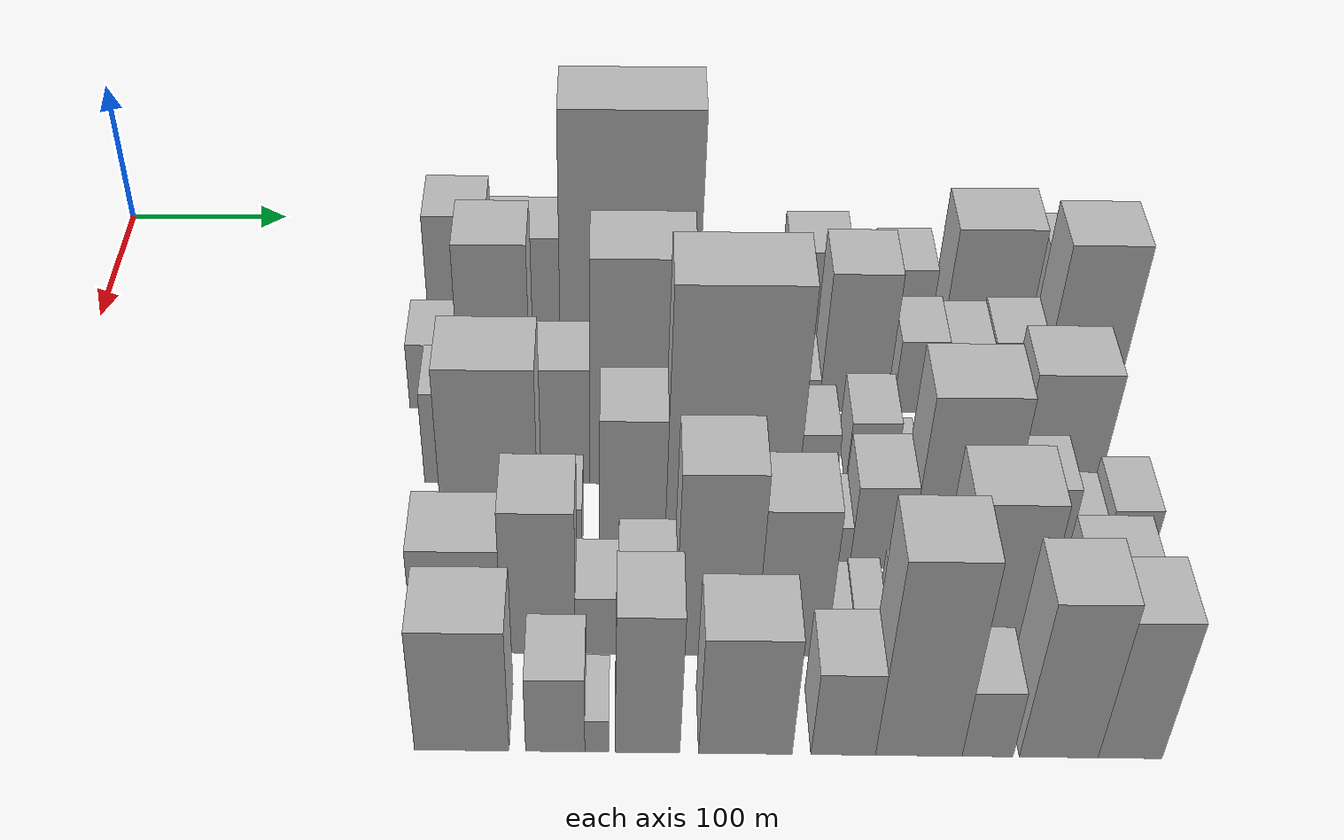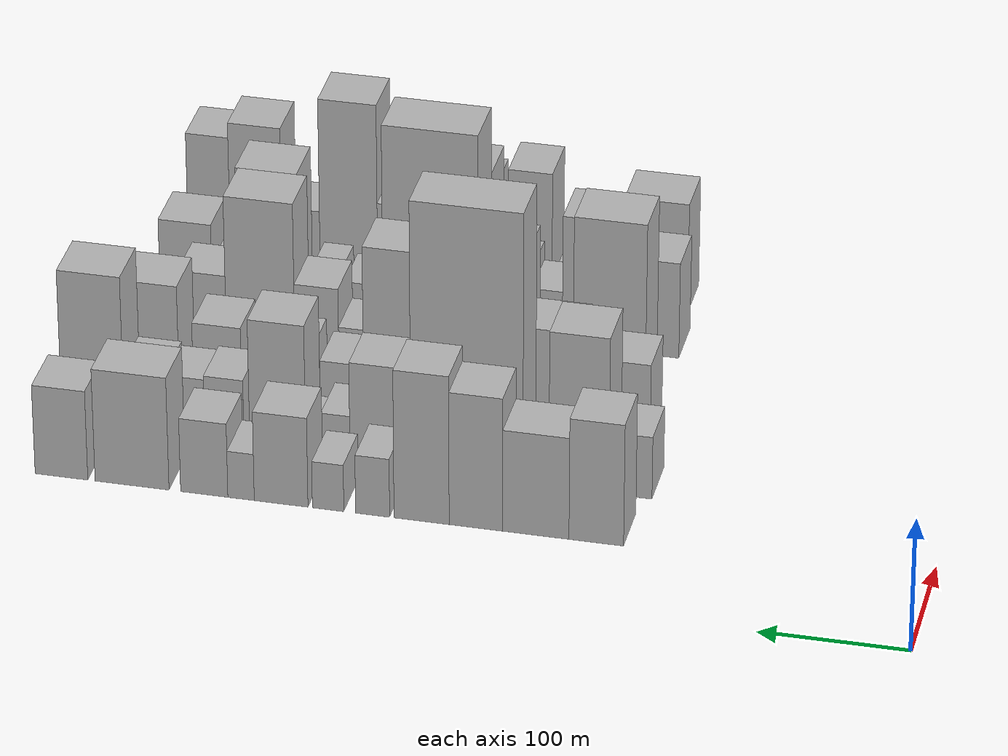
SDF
<sdf version="1.6">
 <world name="default">
  <model name="building_37">
   <static>1</static>
   <pose>100.0000 222.0039 0 0.000000 0.000000 0.000000</pose>
   <link name="link">
    <pose>0 0 46.50 0 0 0</pose>
    <collision name="collision"><geometry><box><size>40.0000 36.5468 93.0000</size></box></geometry></collision>
    <visual name="visual">
     <cast_shadows>0</cast_shadows>
     <geometry><box><size>40.0000 36.5468 93.0000</size></box></geometry>
     <material>
      <script>
       <uri>model://HANNAS_wall/materials/scripts</uri>
       <uri>model://HANNAS_wall/materials/textures</uri>
       <name>vrc/HANNAS_wall</name>
      </script>
     </material>
    </visual>
   </link>
  </model>
  <model name="building_38">
   <static>1</static>
   <pose>100.0000 262.5701 0 0.000000 0.000000 0.000000</pose>
   <link name="link">
    <pose>0 0 39.00 0 0 0</pose>
    <collision name="collision"><geometry><box><size>40.0000 44.5857 78.0000</size></box></geometry></collision>
    <visual name="visual">
     <cast_shadows>0</cast_shadows>
     <geometry><box><size>40.0000 44.5857 78.0000</size></box></geometry>
     <material>
      <script>
       <uri>model://HANNAS_wall/materials/scripts</uri>
       <uri>model://HANNAS_wall/materials/textures</uri>
       <name>vrc/HANNAS_wall</name>
      </script>
     </material>
    </visual>
   </link>
  </model>
  <model name="building_39">
   <static>1</static>
   <pose>100.0000 302.8785 0 0.000000 0.000000 0.000000</pose>
   <link name="link">
    <pose>0 0 51.00 0 0 0</pose>
    <collision name="collision"><geometry><box><size>40.0000 36.0310 102.0000</size></box></geometry></collision>
    <visual name="visual">
     <cast_shadows>0</cast_shadows>
     <geometry><box><size>40.0000 36.0310 102.0000</size></box></geometry>
     <material>
      <script>
       <uri>model://HANNAS_wall/materials/scripts</uri>
       <uri>model://HANNAS_wall/materials/textures</uri>
       <name>vrc/HANNAS_wall</name>
      </script>
     </material>
    </visual>
   </link>
  </model>
  <model name="building_40">
   <static>1</static>
   <pose>100.0000 339.5356 0 0.000000 0.000000 0.000000</pose>
   <link name="link">
    <pose>0 0 57.00 0 0 0</pose>
    <collision name="collision"><geometry><box><size>40.0000 37.2832 114.0000</size></box></geometry></collision>
    <visual name="visual">
     <cast_shadows>0</cast_shadows>
     <geometry><box><size>40.0000 37.2832 114.0000</size></box></geometry>
     <material>
      <script>
       <uri>model://HANNAS_wall/materials/scripts</uri>
       <uri>model://HANNAS_wall/materials/textures</uri>
       <name>vrc/HANNAS_wall</name>
      </script>
     </material>
    </visual>
   </link>
  </model>
  <model name="building_41">
   <static>1</static>
   <pose>100.0000 372.7177 0 0.000000 0.000000 0.000000</pose>
   <link name="link">
    <pose>0 0 22.50 0 0 0</pose>
    <collision name="collision"><geometry><box><size>40.0000 23.0812 45.0000</size></box></geometry></collision>
    <visual name="visual">
     <cast_shadows>0</cast_shadows>
     <geometry><box><size>40.0000 23.0812 45.0000</size></box></geometry>
     <material>
      <script>
       <uri>model://HANNAS_wall/materials/scripts</uri>
       <uri>model://HANNAS_wall/materials/textures</uri>
       <name>vrc/HANNAS_wall</name>
      </script>
     </material>
    </visual>
   </link>
  </model>
  <model name="building_42">
   <static>1</static>
   <pose>100.0000 402.9499 0 0.000000 0.000000 0.000000</pose>
   <link name="link">
    <pose>0 0 18.00 0 0 0</pose>
    <collision name="collision"><geometry><box><size>40.0000 21.3832 36.0000</size></box></geometry></collision>
    <visual name="visual">
     <cast_shadows>0</cast_shadows>
     <geometry><box><size>40.0000 21.3832 36.0000</size></box></geometry>
     <material>
      <script>
       <uri>model://HANNAS_wall/materials/scripts</uri>
       <uri>model://HANNAS_wall/materials/textures</uri>
       <name>vrc/HANNAS_wall</name>
      </script>
     </material>
    </visual>
   </link>
  </model>
  <model name="building_43">
   <static>1</static>
   <pose>100.0000 434.9707 0 0.000000 0.000000 0.000000</pose>
   <link name="link">
    <pose>0 0 34.50 0 0 0</pose>
    <collision name="collision"><geometry><box><size>40.0000 36.6584 69.0000</size></box></geometry></collision>
    <visual name="visual">
     <cast_shadows>0</cast_shadows>
     <geometry><box><size>40.0000 36.6584 69.0000</size></box></geometry>
     <material>
      <script>
       <uri>model://HANNAS_wall/materials/scripts</uri>
       <uri>model://HANNAS_wall/materials/textures</uri>
       <name>vrc/HANNAS_wall</name>
      </script>
     </material>
    </visual>
   </link>
  </model>
  <model name="building_44">
   <static>1</static>
   <pose>100.0000 462.3307 0 0.000000 0.000000 0.000000</pose>
   <link name="link">
    <pose>0 0 18.00 0 0 0</pose>
    <collision name="collision"><geometry><box><size>40.0000 18.0616 36.0000</size></box></geometry></collision>
    <visual name="visual">
     <cast_shadows>0</cast_shadows>
     <geometry><box><size>40.0000 18.0616 36.0000</size></box></geometry>
     <material>
      <script>
       <uri>model://HANNAS_wall/materials/scripts</uri>
       <uri>model://HANNAS_wall/materials/textures</uri>
       <name>vrc/HANNAS_wall</name>
      </script>
     </material>
    </visual>
   </link>
  </model>
  <model name="building_45">
   <static>1</static>
   <pose>100.0000 487.5318 0 0.000000 0.000000 0.000000</pose>
   <link name="link">
    <pose>0 0 28.50 0 0 0</pose>
    <collision name="collision"><geometry><box><size>40.0000 32.3405 57.0000</size></box></geometry></collision>
    <visual name="visual">
     <cast_shadows>0</cast_shadows>
     <geometry><box><size>40.0000 32.3405 57.0000</size></box></geometry>
     <material>
      <script>
       <uri>model://HANNAS_wall/materials/scripts</uri>
       <uri>model://HANNAS_wall/materials/textures</uri>
       <name>vrc/HANNAS_wall</name>
      </script>
     </material>
    </visual>
   </link>
  </model>
  <model name="building_46">
   <static>1</static>
   <pose>100.0000 537.1779 0 0.000000 0.000000 0.000000</pose>
   <link name="link">
    <pose>0 0 43.50 0 0 0</pose>
    <collision name="collision"><geometry><box><size>40.0000 50.9516 87.0000</size></box></geometry></collision>
    <visual name="visual">
     <cast_shadows>0</cast_shadows>
     <geometry><box><size>40.0000 50.9516 87.0000</size></box></geometry>
     <material>
      <script>
       <uri>model://HANNAS_wall/materials/scripts</uri>
       <uri>model://HANNAS_wall/materials/textures</uri>
       <name>vrc/HANNAS_wall</name>
      </script>
     </material>
    </visual>
   </link>
  </model>
  <model name="building_47">
   <static>1</static>
   <pose>100.0000 585.8582 0 0.000000 0.000000 0.000000</pose>
   <link name="link">
    <pose>0 0 34.50 0 0 0</pose>
    <collision name="collision"><geometry><box><size>40.0000 36.4090 69.0000</size></box></geometry></collision>
    <visual name="visual">
     <cast_shadows>0</cast_shadows>
     <geometry><box><size>40.0000 36.4090 69.0000</size></box></geometry>
     <material>
      <script>
       <uri>model://HANNAS_wall/materials/scripts</uri>
       <uri>model://HANNAS_wall/materials/textures</uri>
       <name>vrc/HANNAS_wall</name>
      </script>
     </material>
    </visual>
   </link>
  </model>
  <model name="building_94">
   <static>1</static>
   <pose>160.0000 210.0876 0 0.000000 0.000000 0.000000</pose>
   <link name="link">
    <pose>0 0 24.00 0 0 0</pose>
    <collision name="collision"><geometry><box><size>40.0000 26.2286 48.0000</size></box></geometry></collision>
    <visual name="visual">
     <cast_shadows>0</cast_shadows>
     <geometry><box><size>40.0000 26.2286 48.0000</size></box></geometry>
     <material>
      <script>
       <uri>model://HANNAS_wall/materials/scripts</uri>
       <uri>model://HANNAS_wall/materials/textures</uri>
       <name>vrc/HANNAS_wall</name>
      </script>
     </material>
    </visual>
   </link>
  </model>
  <model name="building_95">
   <static>1</static>
   <pose>160.0000 246.5232 0 0.000000 0.000000 0.000000</pose>
   <link name="link">
    <pose>0 0 60.00 0 0 0</pose>
    <collision name="collision"><geometry><box><size>40.0000 40.6426 120.0000</size></box></geometry></collision>
    <visual name="visual">
     <cast_shadows>0</cast_shadows>
     <geometry><box><size>40.0000 40.6426 120.0000</size></box></geometry>
     <material>
      <script>
       <uri>model://HANNAS_wall/materials/scripts</uri>
       <uri>model://HANNAS_wall/materials/textures</uri>
       <name>vrc/HANNAS_wall</name>
      </script>
     </material>
    </visual>
   </link>
  </model>
  <model name="building_96">
   <static>1</static>
   <pose>160.0000 279.6976 0 0.000000 0.000000 0.000000</pose>
   <link name="link">
    <pose>0 0 12.00 0 0 0</pose>
    <collision name="collision"><geometry><box><size>40.0000 9.7062 24.0000</size></box></geometry></collision>
    <visual name="visual">
     <cast_shadows>0</cast_shadows>
     <geometry><box><size>40.0000 9.7062 24.0000</size></box></geometry>
     <material>
      <script>
       <uri>model://HANNAS_wall/materials/scripts</uri>
       <uri>model://HANNAS_wall/materials/textures</uri>
       <name>vrc/HANNAS_wall</name>
      </script>
     </material>
    </visual>
   </link>
  </model>
  <model name="building_97">
   <static>1</static>
   <pose>160.0000 322.7968 0 0.000000 0.000000 0.000000</pose>
   <link name="link">
    <pose>0 0 103.50 0 0 0</pose>
    <collision name="collision"><geometry><box><size>40.0000 76.4921 207.0000</size></box></geometry></collision>
    <visual name="visual">
     <cast_shadows>0</cast_shadows>
     <geometry><box><size>40.0000 76.4921 207.0000</size></box></geometry>
     <material>
      <script>
       <uri>model://HANNAS_wall/materials/scripts</uri>
       <uri>model://HANNAS_wall/materials/textures</uri>
       <name>vrc/HANNAS_wall</name>
      </script>
     </material>
    </visual>
   </link>
  </model>
  <model name="building_98">
   <static>1</static>
   <pose>160.0000 381.9251 0 0.000000 0.000000 0.000000</pose>
   <link name="link">
    <pose>0 0 39.00 0 0 0</pose>
    <collision name="collision"><geometry><box><size>40.0000 41.7645 78.0000</size></box></geometry></collision>
    <visual name="visual">
     <cast_shadows>0</cast_shadows>
     <geometry><box><size>40.0000 41.7645 78.0000</size></box></geometry>
     <material>
      <script>
       <uri>model://HANNAS_wall/materials/scripts</uri>
       <uri>model://HANNAS_wall/materials/textures</uri>
       <name>vrc/HANNAS_wall</name>
      </script>
     </material>
    </visual>
   </link>
  </model>
  <model name="building_99">
   <static>1</static>
   <pose>160.0000 412.6772 0 0.000000 0.000000 0.000000</pose>
   <link name="link">
    <pose>0 0 18.00 0 0 0</pose>
    <collision name="collision"><geometry><box><size>40.0000 19.7398 36.0000</size></box></geometry></collision>
    <visual name="visual">
     <cast_shadows>0</cast_shadows>
     <geometry><box><size>40.0000 19.7398 36.0000</size></box></geometry>
     <material>
      <script>
       <uri>model://HANNAS_wall/materials/scripts</uri>
       <uri>model://HANNAS_wall/materials/textures</uri>
       <name>vrc/HANNAS_wall</name>
      </script>
     </material>
    </visual>
   </link>
  </model>
  <model name="building_100">
   <static>1</static>
   <pose>160.0000 427.8865 0 0.000000 0.000000 0.000000</pose>
   <link name="link">
    <pose>0 0 12.00 0 0 0</pose>
    <collision name="collision"><geometry><box><size>40.0000 10.6787 24.0000</size></box></geometry></collision>
    <visual name="visual">
     <cast_shadows>0</cast_shadows>
     <geometry><box><size>40.0000 10.6787 24.0000</size></box></geometry>
     <material>
      <script>
       <uri>model://HANNAS_wall/materials/scripts</uri>
       <uri>model://HANNAS_wall/materials/textures</uri>
       <name>vrc/HANNAS_wall</name>
      </script>
     </material>
    </visual>
   </link>
  </model>
  <model name="building_101">
   <static>1</static>
   <pose>160.0000 452.5409 0 0.000000 0.000000 0.000000</pose>
   <link name="link">
    <pose>0 0 51.00 0 0 0</pose>
    <collision name="collision"><geometry><box><size>40.0000 38.6302 102.0000</size></box></geometry></collision>
    <visual name="visual">
     <cast_shadows>0</cast_shadows>
     <geometry><box><size>40.0000 38.6302 102.0000</size></box></geometry>
     <material>
      <script>
       <uri>model://HANNAS_wall/materials/scripts</uri>
       <uri>model://HANNAS_wall/materials/textures</uri>
       <name>vrc/HANNAS_wall</name>
      </script>
     </material>
    </visual>
   </link>
  </model>
  <model name="building_102">
   <static>1</static>
   <pose>160.0000 489.4130 0 0.000000 0.000000 0.000000</pose>
   <link name="link">
    <pose>0 0 27.00 0 0 0</pose>
    <collision name="collision"><geometry><box><size>40.0000 27.1138 54.0000</size></box></geometry></collision>
    <visual name="visual">
     <cast_shadows>0</cast_shadows>
     <geometry><box><size>40.0000 27.1138 54.0000</size></box></geometry>
     <material>
      <script>
       <uri>model://HANNAS_wall/materials/scripts</uri>
       <uri>model://HANNAS_wall/materials/textures</uri>
       <name>vrc/HANNAS_wall</name>
      </script>
     </material>
    </visual>
   </link>
  </model>
  <model name="building_103">
   <static>1</static>
   <pose>160.0000 515.7917 0 0.000000 0.000000 0.000000</pose>
   <link name="link">
    <pose>0 0 25.50 0 0 0</pose>
    <collision name="collision"><geometry><box><size>40.0000 25.6437 51.0000</size></box></geometry></collision>
    <visual name="visual">
     <cast_shadows>0</cast_shadows>
     <geometry><box><size>40.0000 25.6437 51.0000</size></box></geometry>
     <material>
      <script>
       <uri>model://HANNAS_wall/materials/scripts</uri>
       <uri>model://HANNAS_wall/materials/textures</uri>
       <name>vrc/HANNAS_wall</name>
      </script>
     </material>
    </visual>
   </link>
  </model>
  <model name="building_104">
   <static>1</static>
   <pose>160.0000 543.7507 0 0.000000 0.000000 0.000000</pose>
   <link name="link">
    <pose>0 0 27.00 0 0 0</pose>
    <collision name="collision"><geometry><box><size>40.0000 30.2743 54.0000</size></box></geometry></collision>
    <visual name="visual">
     <cast_shadows>0</cast_shadows>
     <geometry><box><size>40.0000 30.2743 54.0000</size></box></geometry>
     <material>
      <script>
       <uri>model://HANNAS_wall/materials/scripts</uri>
       <uri>model://HANNAS_wall/materials/textures</uri>
       <name>vrc/HANNAS_wall</name>
      </script>
     </material>
    </visual>
   </link>
  </model>
  <model name="building_105">
   <static>1</static>
   <pose>160.0000 580.6476 0 0.000000 0.000000 0.000000</pose>
   <link name="link">
    <pose>0 0 61.50 0 0 0</pose>
    <collision name="collision"><geometry><box><size>40.0000 43.5194 123.0000</size></box></geometry></collision>
    <visual name="visual">
     <cast_shadows>0</cast_shadows>
     <geometry><box><size>40.0000 43.5194 123.0000</size></box></geometry>
     <material>
      <script>
       <uri>model://HANNAS_wall/materials/scripts</uri>
       <uri>model://HANNAS_wall/materials/textures</uri>
       <name>vrc/HANNAS_wall</name>
      </script>
     </material>
    </visual>
   </link>
  </model>
  <model name="building_148">
   <static>1</static>
   <pose>220.0000 229.7877 0 0.000000 0.000000 0.000000</pose>
   <link name="link">
    <pose>0 0 33.00 0 0 0</pose>
    <collision name="collision"><geometry><box><size>40.0000 38.5057 66.0000</size></box></geometry></collision>
    <visual name="visual">
     <cast_shadows>0</cast_shadows>
     <geometry><box><size>40.0000 38.5057 66.0000</size></box></geometry>
     <material>
      <script>
       <uri>model://HANNAS_wall/materials/scripts</uri>
       <uri>model://HANNAS_wall/materials/textures</uri>
       <name>vrc/HANNAS_wall</name>
      </script>
     </material>
    </visual>
   </link>
  </model>
  <model name="building_149">
   <static>1</static>
   <pose>220.0000 280.4697 0 0.000000 0.000000 0.000000</pose>
   <link name="link">
    <pose>0 0 42.00 0 0 0</pose>
    <collision name="collision"><geometry><box><size>40.0000 42.8583 84.0000</size></box></geometry></collision>
    <visual name="visual">
     <cast_shadows>0</cast_shadows>
     <geometry><box><size>40.0000 42.8583 84.0000</size></box></geometry>
     <material>
      <script>
       <uri>model://HANNAS_wall/materials/scripts</uri>
       <uri>model://HANNAS_wall/materials/textures</uri>
       <name>vrc/HANNAS_wall</name>
      </script>
     </material>
    </visual>
   </link>
  </model>
  <model name="building_150">
   <static>1</static>
   <pose>220.0000 329.0296 0 0.000000 0.000000 0.000000</pose>
   <link name="link">
    <pose>0 0 79.50 0 0 0</pose>
    <collision name="collision"><geometry><box><size>40.0000 54.2614 159.0000</size></box></geometry></collision>
    <visual name="visual">
     <cast_shadows>0</cast_shadows>
     <geometry><box><size>40.0000 54.2614 159.0000</size></box></geometry>
     <material>
      <script>
       <uri>model://HANNAS_wall/materials/scripts</uri>
       <uri>model://HANNAS_wall/materials/textures</uri>
       <name>vrc/HANNAS_wall</name>
      </script>
     </material>
    </visual>
   </link>
  </model>
  <model name="building_151">
   <static>1</static>
   <pose>220.0000 382.0455 0 0.000000 0.000000 0.000000</pose>
   <link name="link">
    <pose>0 0 66.00 0 0 0</pose>
    <collision name="collision"><geometry><box><size>40.0000 51.7706 132.0000</size></box></geometry></collision>
    <visual name="visual">
     <cast_shadows>0</cast_shadows>
     <geometry><box><size>40.0000 51.7706 132.0000</size></box></geometry>
     <material>
      <script>
       <uri>model://HANNAS_wall/materials/scripts</uri>
       <uri>model://HANNAS_wall/materials/textures</uri>
       <name>vrc/HANNAS_wall</name>
      </script>
     </material>
    </visual>
   </link>
  </model>
  <model name="building_152">
   <static>1</static>
   <pose>220.0000 427.6225 0 0.000000 0.000000 0.000000</pose>
   <link name="link">
    <pose>0 0 19.50 0 0 0</pose>
    <collision name="collision"><geometry><box><size>40.0000 21.3834 39.0000</size></box></geometry></collision>
    <visual name="visual">
     <cast_shadows>0</cast_shadows>
     <geometry><box><size>40.0000 21.3834 39.0000</size></box></geometry>
     <material>
      <script>
       <uri>model://HANNAS_wall/materials/scripts</uri>
       <uri>model://HANNAS_wall/materials/textures</uri>
       <name>vrc/HANNAS_wall</name>
      </script>
     </material>
    </visual>
   </link>
  </model>
  <model name="building_153">
   <static>1</static>
   <pose>220.0000 456.7875 0 0.000000 0.000000 0.000000</pose>
   <link name="link">
    <pose>0 0 24.00 0 0 0</pose>
    <collision name="collision"><geometry><box><size>40.0000 26.9465 48.0000</size></box></geometry></collision>
    <visual name="visual">
     <cast_shadows>0</cast_shadows>
     <geometry><box><size>40.0000 26.9465 48.0000</size></box></geometry>
     <material>
      <script>
       <uri>model://HANNAS_wall/materials/scripts</uri>
       <uri>model://HANNAS_wall/materials/textures</uri>
       <name>vrc/HANNAS_wall</name>
      </script>
     </material>
    </visual>
   </link>
  </model>
  <model name="building_154">
   <static>1</static>
   <pose>220.0000 479.7477 0 0.000000 0.000000 0.000000</pose>
   <link name="link">
    <pose>0 0 7.50 0 0 0</pose>
    <collision name="collision"><geometry><box><size>40.0000 6.9739 15.0000</size></box></geometry></collision>
    <visual name="visual">
     <cast_shadows>0</cast_shadows>
     <geometry><box><size>40.0000 6.9739 15.0000</size></box></geometry>
     <material>
      <script>
       <uri>model://HANNAS_wall/materials/scripts</uri>
       <uri>model://HANNAS_wall/materials/textures</uri>
       <name>vrc/HANNAS_wall</name>
      </script>
     </material>
    </visual>
   </link>
  </model>
  <model name="building_155">
   <static>1</static>
   <pose>220.0000 510.1646 0 0.000000 0.000000 0.000000</pose>
   <link name="link">
    <pose>0 0 28.50 0 0 0</pose>
    <collision name="collision"><geometry><box><size>40.0000 33.8600 57.0000</size></box></geometry></collision>
    <visual name="visual">
     <cast_shadows>0</cast_shadows>
     <geometry><box><size>40.0000 33.8600 57.0000</size></box></geometry>
     <material>
      <script>
       <uri>model://HANNAS_wall/materials/scripts</uri>
       <uri>model://HANNAS_wall/materials/textures</uri>
       <name>vrc/HANNAS_wall</name>
      </script>
     </material>
    </visual>
   </link>
  </model>
  <model name="building_156">
   <static>1</static>
   <pose>220.0000 559.9967 0 0.000000 0.000000 0.000000</pose>
   <link name="link">
    <pose>0 0 42.00 0 0 0</pose>
    <collision name="collision"><geometry><box><size>40.0000 45.8041 84.0000</size></box></geometry></collision>
    <visual name="visual">
     <cast_shadows>0</cast_shadows>
     <geometry><box><size>40.0000 45.8041 84.0000</size></box></geometry>
     <material>
      <script>
       <uri>model://HANNAS_wall/materials/scripts</uri>
       <uri>model://HANNAS_wall/materials/textures</uri>
       <name>vrc/HANNAS_wall</name>
      </script>
     </material>
    </visual>
   </link>
  </model>
  <model name="building_199">
   <static>1</static>
   <pose>280.0000 251.1501 0 0.000000 0.000000 0.000000</pose>
   <link name="link">
    <pose>0 0 69.00 0 0 0</pose>
    <collision name="collision"><geometry><box><size>40.0000 50.0779 138.0000</size></box></geometry></collision>
    <visual name="visual">
     <cast_shadows>0</cast_shadows>
     <geometry><box><size>40.0000 50.0779 138.0000</size></box></geometry>
     <material>
      <script>
       <uri>model://HANNAS_wall/materials/scripts</uri>
       <uri>model://HANNAS_wall/materials/textures</uri>
       <name>vrc/HANNAS_wall</name>
      </script>
     </material>
    </visual>
   </link>
  </model>
  <model name="building_200">
   <static>1</static>
   <pose>280.0000 287.5621 0 0.000000 0.000000 0.000000</pose>
   <link name="link">
    <pose>0 0 21.00 0 0 0</pose>
    <collision name="collision"><geometry><box><size>40.0000 22.7461 42.0000</size></box></geometry></collision>
    <visual name="visual">
     <cast_shadows>0</cast_shadows>
     <geometry><box><size>40.0000 22.7461 42.0000</size></box></geometry>
     <material>
      <script>
       <uri>model://HANNAS_wall/materials/scripts</uri>
       <uri>model://HANNAS_wall/materials/textures</uri>
       <name>vrc/HANNAS_wall</name>
      </script>
     </material>
    </visual>
   </link>
  </model>
  <model name="building_201">
   <static>1</static>
   <pose>280.0000 325.0978 0 0.000000 0.000000 0.000000</pose>
   <link name="link">
    <pose>0 0 52.50 0 0 0</pose>
    <collision name="collision"><geometry><box><size>40.0000 34.3254 105.0000</size></box></geometry></collision>
    <visual name="visual">
     <cast_shadows>0</cast_shadows>
     <geometry><box><size>40.0000 34.3254 105.0000</size></box></geometry>
     <material>
      <script>
       <uri>model://HANNAS_wall/materials/scripts</uri>
       <uri>model://HANNAS_wall/materials/textures</uri>
       <name>vrc/HANNAS_wall</name>
      </script>
     </material>
    </visual>
   </link>
  </model>
  <model name="building_202">
   <static>1</static>
   <pose>280.0000 375.5246 0 0.000000 0.000000 0.000000</pose>
   <link name="link">
    <pose>0 0 96.00 0 0 0</pose>
    <collision name="collision"><geometry><box><size>40.0000 66.5281 192.0000</size></box></geometry></collision>
    <visual name="visual">
     <cast_shadows>0</cast_shadows>
     <geometry><box><size>40.0000 66.5281 192.0000</size></box></geometry>
     <material>
      <script>
       <uri>model://HANNAS_wall/materials/scripts</uri>
       <uri>model://HANNAS_wall/materials/textures</uri>
       <name>vrc/HANNAS_wall</name>
      </script>
     </material>
    </visual>
   </link>
  </model>
  <model name="building_203">
   <static>1</static>
   <pose>280.0000 419.0102 0 0.000000 0.000000 0.000000</pose>
   <link name="link">
    <pose>0 0 7.50 0 0 0</pose>
    <collision name="collision"><geometry><box><size>40.0000 6.4431 15.0000</size></box></geometry></collision>
    <visual name="visual">
     <cast_shadows>0</cast_shadows>
     <geometry><box><size>40.0000 6.4431 15.0000</size></box></geometry>
     <material>
      <script>
       <uri>model://HANNAS_wall/materials/scripts</uri>
       <uri>model://HANNAS_wall/materials/textures</uri>
       <name>vrc/HANNAS_wall</name>
      </script>
     </material>
    </visual>
   </link>
  </model>
  <model name="building_204">
   <static>1</static>
   <pose>280.0000 431.2254 0 0.000000 0.000000 0.000000</pose>
   <link name="link">
    <pose>0 0 15.00 0 0 0</pose>
    <collision name="collision"><geometry><box><size>40.0000 17.9874 30.0000</size></box></geometry></collision>
    <visual name="visual">
     <cast_shadows>0</cast_shadows>
     <geometry><box><size>40.0000 17.9874 30.0000</size></box></geometry>
     <material>
      <script>
       <uri>model://HANNAS_wall/materials/scripts</uri>
       <uri>model://HANNAS_wall/materials/textures</uri>
       <name>vrc/HANNAS_wall</name>
      </script>
     </material>
    </visual>
   </link>
  </model>
  <model name="building_205">
   <static>1</static>
   <pose>280.0000 455.6945 0 0.000000 0.000000 0.000000</pose>
   <link name="link">
    <pose>0 0 30.00 0 0 0</pose>
    <collision name="collision"><geometry><box><size>40.0000 30.9508 60.0000</size></box></geometry></collision>
    <visual name="visual">
     <cast_shadows>0</cast_shadows>
     <geometry><box><size>40.0000 30.9508 60.0000</size></box></geometry>
     <material>
      <script>
       <uri>model://HANNAS_wall/materials/scripts</uri>
       <uri>model://HANNAS_wall/materials/textures</uri>
       <name>vrc/HANNAS_wall</name>
      </script>
     </material>
    </visual>
   </link>
  </model>
  <model name="building_206">
   <static>1</static>
   <pose>280.0000 495.4267 0 0.000000 0.000000 0.000000</pose>
   <link name="link">
    <pose>0 0 61.50 0 0 0</pose>
    <collision name="collision"><geometry><box><size>40.0000 48.5135 123.0000</size></box></geometry></collision>
    <visual name="visual">
     <cast_shadows>0</cast_shadows>
     <geometry><box><size>40.0000 48.5135 123.0000</size></box></geometry>
     <material>
      <script>
       <uri>model://HANNAS_wall/materials/scripts</uri>
       <uri>model://HANNAS_wall/materials/textures</uri>
       <name>vrc/HANNAS_wall</name>
      </script>
     </material>
    </visual>
   </link>
  </model>
  <model name="building_207">
   <static>1</static>
   <pose>280.0000 536.5306 0 0.000000 0.000000 0.000000</pose>
   <link name="link">
    <pose>0 0 30.00 0 0 0</pose>
    <collision name="collision"><geometry><box><size>40.0000 33.6944 60.0000</size></box></geometry></collision>
    <visual name="visual">
     <cast_shadows>0</cast_shadows>
     <geometry><box><size>40.0000 33.6944 60.0000</size></box></geometry>
     <material>
      <script>
       <uri>model://HANNAS_wall/materials/scripts</uri>
       <uri>model://HANNAS_wall/materials/textures</uri>
       <name>vrc/HANNAS_wall</name>
      </script>
     </material>
    </visual>
   </link>
  </model>
  <model name="building_208">
   <static>1</static>
   <pose>280.0000 562.9861 0 0.000000 0.000000 0.000000</pose>
   <link name="link">
    <pose>0 0 16.50 0 0 0</pose>
    <collision name="collision"><geometry><box><size>40.0000 19.2165 33.0000</size></box></geometry></collision>
    <visual name="visual">
     <cast_shadows>0</cast_shadows>
     <geometry><box><size>40.0000 19.2165 33.0000</size></box></geometry>
     <material>
      <script>
       <uri>model://HANNAS_wall/materials/scripts</uri>
       <uri>model://HANNAS_wall/materials/textures</uri>
       <name>vrc/HANNAS_wall</name>
      </script>
     </material>
    </visual>
   </link>
  </model>
  <model name="building_209">
   <static>1</static>
   <pose>280.0000 585.2209 0 0.000000 0.000000 0.000000</pose>
   <link name="link">
    <pose>0 0 22.50 0 0 0</pose>
    <collision name="collision"><geometry><box><size>40.0000 25.2531 45.0000</size></box></geometry></collision>
    <visual name="visual">
     <cast_shadows>0</cast_shadows>
     <geometry><box><size>40.0000 25.2531 45.0000</size></box></geometry>
     <material>
      <script>
       <uri>model://HANNAS_wall/materials/scripts</uri>
       <uri>model://HANNAS_wall/materials/textures</uri>
       <name>vrc/HANNAS_wall</name>
      </script>
     </material>
    </visual>
   </link>
  </model>
  <model name="building_250">
   <static>1</static>
   <pose>340.0000 237.2342 0 0.000000 0.000000 0.000000</pose>
   <link name="link">
    <pose>0 0 37.50 0 0 0</pose>
    <collision name="collision"><geometry><box><size>40.0000 44.9484 75.0000</size></box></geometry></collision>
    <visual name="visual">
     <cast_shadows>0</cast_shadows>
     <geometry><box><size>40.0000 44.9484 75.0000</size></box></geometry>
     <material>
      <script>
       <uri>model://HANNAS_wall/materials/scripts</uri>
       <uri>model://HANNAS_wall/materials/textures</uri>
       <name>vrc/HANNAS_wall</name>
      </script>
     </material>
    </visual>
   </link>
  </model>
  <model name="building_251">
   <static>1</static>
   <pose>340.0000 278.1554 0 0.000000 0.000000 0.000000</pose>
   <link name="link">
    <pose>0 0 51.00 0 0 0</pose>
    <collision name="collision"><geometry><box><size>40.0000 36.8940 102.0000</size></box></geometry></collision>
    <visual name="visual">
     <cast_shadows>0</cast_shadows>
     <geometry><box><size>40.0000 36.8940 102.0000</size></box></geometry>
     <material>
      <script>
       <uri>model://HANNAS_wall/materials/scripts</uri>
       <uri>model://HANNAS_wall/materials/textures</uri>
       <name>vrc/HANNAS_wall</name>
      </script>
     </material>
    </visual>
   </link>
  </model>
  <model name="building_252">
   <static>1</static>
   <pose>340.0000 307.3551 0 0.000000 0.000000 0.000000</pose>
   <link name="link">
    <pose>0 0 21.00 0 0 0</pose>
    <collision name="collision"><geometry><box><size>40.0000 21.5054 42.0000</size></box></geometry></collision>
    <visual name="visual">
     <cast_shadows>0</cast_shadows>
     <geometry><box><size>40.0000 21.5054 42.0000</size></box></geometry>
     <material>
      <script>
       <uri>model://HANNAS_wall/materials/scripts</uri>
       <uri>model://HANNAS_wall/materials/textures</uri>
       <name>vrc/HANNAS_wall</name>
      </script>
     </material>
    </visual>
   </link>
  </model>
  <model name="building_253">
   <static>1</static>
   <pose>340.0000 332.3922 0 0.000000 0.000000 0.000000</pose>
   <link name="link">
    <pose>0 0 28.50 0 0 0</pose>
    <collision name="collision"><geometry><box><size>40.0000 28.5689 57.0000</size></box></geometry></collision>
    <visual name="visual">
     <cast_shadows>0</cast_shadows>
     <geometry><box><size>40.0000 28.5689 57.0000</size></box></geometry>
     <material>
      <script>
       <uri>model://HANNAS_wall/materials/scripts</uri>
       <uri>model://HANNAS_wall/materials/textures</uri>
       <name>vrc/HANNAS_wall</name>
      </script>
     </material>
    </visual>
   </link>
  </model>
  <model name="building_254">
   <static>1</static>
   <pose>340.0000 366.9986 0 0.000000 0.000000 0.000000</pose>
   <link name="link">
    <pose>0 0 64.50 0 0 0</pose>
    <collision name="collision"><geometry><box><size>40.0000 40.6440 129.0000</size></box></geometry></collision>
    <visual name="visual">
     <cast_shadows>0</cast_shadows>
     <geometry><box><size>40.0000 40.6440 129.0000</size></box></geometry>
     <material>
      <script>
       <uri>model://HANNAS_wall/materials/scripts</uri>
       <uri>model://HANNAS_wall/materials/textures</uri>
       <name>vrc/HANNAS_wall</name>
      </script>
     </material>
    </visual>
   </link>
  </model>
  <model name="building_255">
   <static>1</static>
   <pose>340.0000 405.1842 0 0.000000 0.000000 0.000000</pose>
   <link name="link">
    <pose>0 0 52.50 0 0 0</pose>
    <collision name="collision"><geometry><box><size>40.0000 35.7270 105.0000</size></box></geometry></collision>
    <visual name="visual">
     <cast_shadows>0</cast_shadows>
     <geometry><box><size>40.0000 35.7270 105.0000</size></box></geometry>
     <material>
      <script>
       <uri>model://HANNAS_wall/materials/scripts</uri>
       <uri>model://HANNAS_wall/materials/textures</uri>
       <name>vrc/HANNAS_wall</name>
      </script>
     </material>
    </visual>
   </link>
  </model>
  <model name="building_256">
   <static>1</static>
   <pose>340.0000 428.9954 0 0.000000 0.000000 0.000000</pose>
   <link name="link">
    <pose>0 0 13.50 0 0 0</pose>
    <collision name="collision"><geometry><box><size>40.0000 11.8954 27.0000</size></box></geometry></collision>
    <visual name="visual">
     <cast_shadows>0</cast_shadows>
     <geometry><box><size>40.0000 11.8954 27.0000</size></box></geometry>
     <material>
      <script>
       <uri>model://HANNAS_wall/materials/scripts</uri>
       <uri>model://HANNAS_wall/materials/textures</uri>
       <name>vrc/HANNAS_wall</name>
      </script>
     </material>
    </visual>
   </link>
  </model>
  <model name="building_257">
   <static>1</static>
   <pose>340.0000 442.9900 0 0.000000 0.000000 0.000000</pose>
   <link name="link">
    <pose>0 0 15.00 0 0 0</pose>
    <collision name="collision"><geometry><box><size>40.0000 16.0938 30.0000</size></box></geometry></collision>
    <visual name="visual">
     <cast_shadows>0</cast_shadows>
     <geometry><box><size>40.0000 16.0938 30.0000</size></box></geometry>
     <material>
      <script>
       <uri>model://HANNAS_wall/materials/scripts</uri>
       <uri>model://HANNAS_wall/materials/textures</uri>
       <name>vrc/HANNAS_wall</name>
      </script>
     </material>
    </visual>
   </link>
  </model>
  <model name="building_258">
   <static>1</static>
   <pose>340.0000 464.4818 0 0.000000 0.000000 0.000000</pose>
   <link name="link">
    <pose>0 0 18.00 0 0 0</pose>
    <collision name="collision"><geometry><box><size>40.0000 20.8900 36.0000</size></box></geometry></collision>
    <visual name="visual">
     <cast_shadows>0</cast_shadows>
     <geometry><box><size>40.0000 20.8900 36.0000</size></box></geometry>
     <material>
      <script>
       <uri>model://HANNAS_wall/materials/scripts</uri>
       <uri>model://HANNAS_wall/materials/textures</uri>
       <name>vrc/HANNAS_wall</name>
      </script>
     </material>
    </visual>
   </link>
  </model>
  <model name="building_259">
   <static>1</static>
   <pose>340.0000 505.6894 0 0.000000 0.000000 0.000000</pose>
   <link name="link">
    <pose>0 0 55.50 0 0 0</pose>
    <collision name="collision"><geometry><box><size>40.0000 43.5251 111.0000</size></box></geometry></collision>
    <visual name="visual">
     <cast_shadows>0</cast_shadows>
     <geometry><box><size>40.0000 43.5251 111.0000</size></box></geometry>
     <material>
      <script>
       <uri>model://HANNAS_wall/materials/scripts</uri>
       <uri>model://HANNAS_wall/materials/textures</uri>
       <name>vrc/HANNAS_wall</name>
      </script>
     </material>
    </visual>
   </link>
  </model>
  <model name="building_260">
   <static>1</static>
   <pose>340.0000 536.6325 0 0.000000 0.000000 0.000000</pose>
   <link name="link">
    <pose>0 0 16.50 0 0 0</pose>
    <collision name="collision"><geometry><box><size>40.0000 18.3612 33.0000</size></box></geometry></collision>
    <visual name="visual">
     <cast_shadows>0</cast_shadows>
     <geometry><box><size>40.0000 18.3612 33.0000</size></box></geometry>
     <material>
      <script>
       <uri>model://HANNAS_wall/materials/scripts</uri>
       <uri>model://HANNAS_wall/materials/textures</uri>
       <name>vrc/HANNAS_wall</name>
      </script>
     </material>
    </visual>
   </link>
  </model>
  <model name="building_261">
   <static>1</static>
   <pose>340.0000 564.5853 0 0.000000 0.000000 0.000000</pose>
   <link name="link">
    <pose>0 0 31.50 0 0 0</pose>
    <collision name="collision"><geometry><box><size>40.0000 37.5446 63.0000</size></box></geometry></collision>
    <visual name="visual">
     <cast_shadows>0</cast_shadows>
     <geometry><box><size>40.0000 37.5446 63.0000</size></box></geometry>
     <material>
      <script>
       <uri>model://HANNAS_wall/materials/scripts</uri>
       <uri>model://HANNAS_wall/materials/textures</uri>
       <name>vrc/HANNAS_wall</name>
      </script>
     </material>
    </visual>
   </link>
  </model>
  <model name="building_303">
   <static>1</static>
   <pose>400.0000 243.2642 0 0.000000 0.000000 0.000000</pose>
   <link name="link">
    <pose>0 0 43.50 0 0 0</pose>
    <collision name="collision"><geometry><box><size>40.0000 45.4996 87.0000</size></box></geometry></collision>
    <visual name="visual">
     <cast_shadows>0</cast_shadows>
     <geometry><box><size>40.0000 45.4996 87.0000</size></box></geometry>
     <material>
      <script>
       <uri>model://HANNAS_wall/materials/scripts</uri>
       <uri>model://HANNAS_wall/materials/textures</uri>
       <name>vrc/HANNAS_wall</name>
      </script>
     </material>
    </visual>
   </link>
  </model>
  <model name="building_304">
   <static>1</static>
   <pose>400.0000 288.2163 0 0.000000 0.000000 0.000000</pose>
   <link name="link">
    <pose>0 0 27.00 0 0 0</pose>
    <collision name="collision"><geometry><box><size>40.0000 28.4044 54.0000</size></box></geometry></collision>
    <visual name="visual">
     <cast_shadows>0</cast_shadows>
     <geometry><box><size>40.0000 28.4044 54.0000</size></box></geometry>
     <material>
      <script>
       <uri>model://HANNAS_wall/materials/scripts</uri>
       <uri>model://HANNAS_wall/materials/textures</uri>
       <name>vrc/HANNAS_wall</name>
      </script>
     </material>
    </visual>
   </link>
  </model>
  <model name="building_305">
   <static>1</static>
   <pose>400.0000 308.1759 0 0.000000 0.000000 0.000000</pose>
   <link name="link">
    <pose>0 0 12.00 0 0 0</pose>
    <collision name="collision"><geometry><box><size>40.0000 11.5147 24.0000</size></box></geometry></collision>
    <visual name="visual">
     <cast_shadows>0</cast_shadows>
     <geometry><box><size>40.0000 11.5147 24.0000</size></box></geometry>
     <material>
      <script>
       <uri>model://HANNAS_wall/materials/scripts</uri>
       <uri>model://HANNAS_wall/materials/textures</uri>
       <name>vrc/HANNAS_wall</name>
      </script>
     </material>
    </visual>
   </link>
  </model>
  <model name="building_306">
   <static>1</static>
   <pose>400.0000 332.5060 0 0.000000 0.000000 0.000000</pose>
   <link name="link">
    <pose>0 0 49.50 0 0 0</pose>
    <collision name="collision"><geometry><box><size>40.0000 31.1455 99.0000</size></box></geometry></collision>
    <visual name="visual">
     <cast_shadows>0</cast_shadows>
     <geometry><box><size>40.0000 31.1455 99.0000</size></box></geometry>
     <material>
      <script>
       <uri>model://HANNAS_wall/materials/scripts</uri>
       <uri>model://HANNAS_wall/materials/textures</uri>
       <name>vrc/HANNAS_wall</name>
      </script>
     </material>
    </visual>
   </link>
  </model>
  <model name="building_307">
   <static>1</static>
   <pose>400.0000 379.5316 0 0.000000 0.000000 0.000000</pose>
   <link name="link">
    <pose>0 0 42.00 0 0 0</pose>
    <collision name="collision"><geometry><box><size>40.0000 44.9058 84.0000</size></box></geometry></collision>
    <visual name="visual">
     <cast_shadows>0</cast_shadows>
     <geometry><box><size>40.0000 44.9058 84.0000</size></box></geometry>
     <material>
      <script>
       <uri>model://HANNAS_wall/materials/scripts</uri>
       <uri>model://HANNAS_wall/materials/textures</uri>
       <name>vrc/HANNAS_wall</name>
      </script>
     </material>
    </visual>
   </link>
  </model>
  <model name="building_308">
   <static>1</static>
   <pose>400.0000 426.4610 0 0.000000 0.000000 0.000000</pose>
   <link name="link">
    <pose>0 0 30.00 0 0 0</pose>
    <collision name="collision"><geometry><box><size>40.0000 30.9530 60.0000</size></box></geometry></collision>
    <visual name="visual">
     <cast_shadows>0</cast_shadows>
     <geometry><box><size>40.0000 30.9530 60.0000</size></box></geometry>
     <material>
      <script>
       <uri>model://HANNAS_wall/materials/scripts</uri>
       <uri>model://HANNAS_wall/materials/textures</uri>
       <name>vrc/HANNAS_wall</name>
      </script>
     </material>
    </visual>
   </link>
  </model>
  <model name="building_309">
   <static>1</static>
   <pose>400.0000 462.6947 0 0.000000 0.000000 0.000000</pose>
   <link name="link">
    <pose>0 0 69.00 0 0 0</pose>
    <collision name="collision"><geometry><box><size>40.0000 41.5144 138.0000</size></box></geometry></collision>
    <visual name="visual">
     <cast_shadows>0</cast_shadows>
     <geometry><box><size>40.0000 41.5144 138.0000</size></box></geometry>
     <material>
      <script>
       <uri>model://HANNAS_wall/materials/scripts</uri>
       <uri>model://HANNAS_wall/materials/textures</uri>
       <name>vrc/HANNAS_wall</name>
      </script>
     </material>
    </visual>
   </link>
  </model>
  <model name="building_310">
   <static>1</static>
   <pose>400.0000 495.6310 0 0.000000 0.000000 0.000000</pose>
   <link name="link">
    <pose>0 0 24.00 0 0 0</pose>
    <collision name="collision"><geometry><box><size>40.0000 24.3581 48.0000</size></box></geometry></collision>
    <visual name="visual">
     <cast_shadows>0</cast_shadows>
     <geometry><box><size>40.0000 24.3581 48.0000</size></box></geometry>
     <material>
      <script>
       <uri>model://HANNAS_wall/materials/scripts</uri>
       <uri>model://HANNAS_wall/materials/textures</uri>
       <name>vrc/HANNAS_wall</name>
      </script>
     </material>
    </visual>
   </link>
  </model>
  <model name="building_311">
   <static>1</static>
   <pose>400.0000 529.6445 0 0.000000 0.000000 0.000000</pose>
   <link name="link">
    <pose>0 0 55.50 0 0 0</pose>
    <collision name="collision"><geometry><box><size>40.0000 37.6689 111.0000</size></box></geometry></collision>
    <visual name="visual">
     <cast_shadows>0</cast_shadows>
     <geometry><box><size>40.0000 37.6689 111.0000</size></box></geometry>
     <material>
      <script>
       <uri>model://HANNAS_wall/materials/scripts</uri>
       <uri>model://HANNAS_wall/materials/textures</uri>
       <name>vrc/HANNAS_wall</name>
      </script>
     </material>
    </visual>
   </link>
  </model>
  <model name="building_312">
   <static>1</static>
   <pose>400.0000 563.7508 0 0.000000 0.000000 0.000000</pose>
   <link name="link">
    <pose>0 0 49.50 0 0 0</pose>
    <collision name="collision"><geometry><box><size>40.0000 30.5437 99.0000</size></box></geometry></collision>
    <visual name="visual">
     <cast_shadows>0</cast_shadows>
     <geometry><box><size>40.0000 30.5437 99.0000</size></box></geometry>
     <material>
      <script>
       <uri>model://HANNAS_wall/materials/scripts</uri>
       <uri>model://HANNAS_wall/materials/textures</uri>
       <name>vrc/HANNAS_wall</name>
      </script>
     </material>
    </visual>
   </link>
  </model>
 </world>
</sdf>
